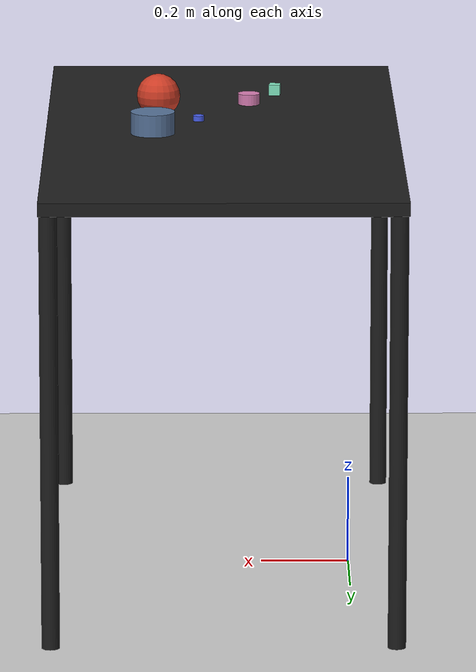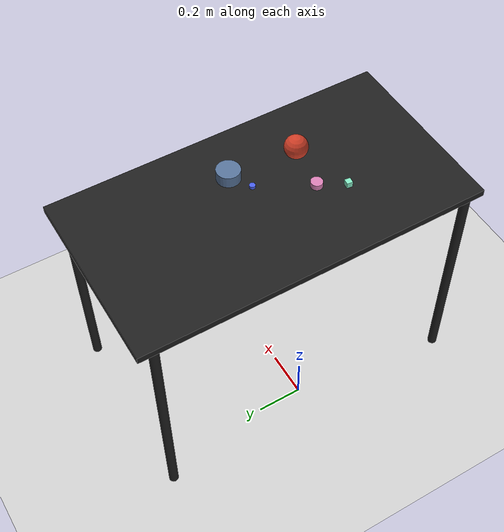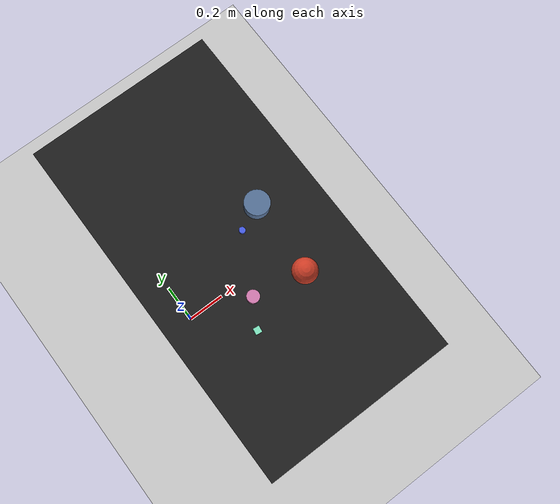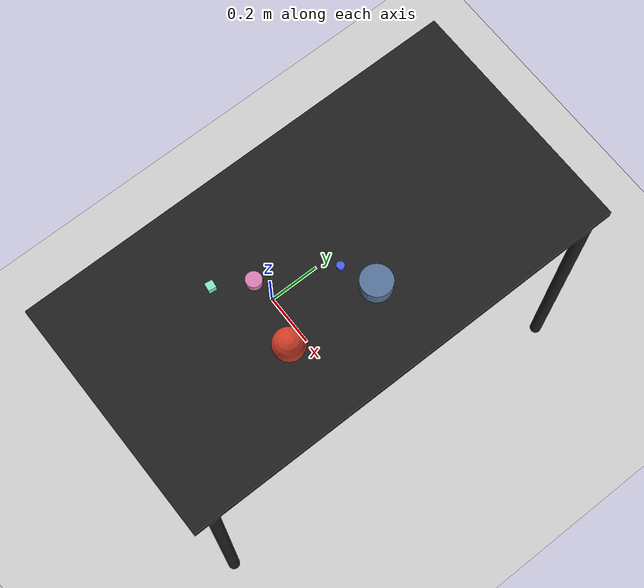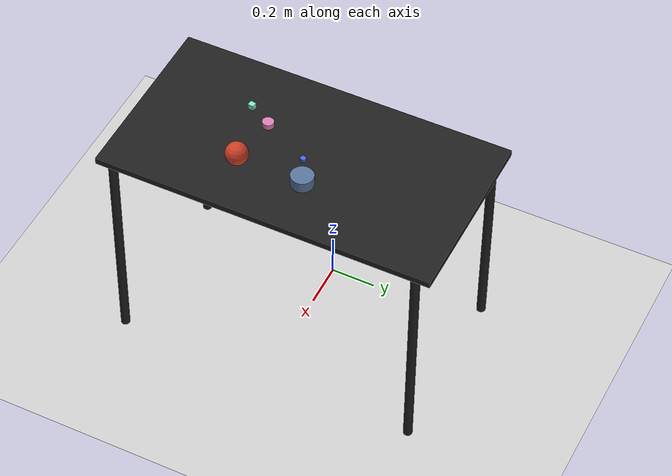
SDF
<?xml version="1.0" ?>
<sdf version="1.6">
  <world name="arm_world">
    <plugin filename="gz-sim-physics-system" name="gz::sim::systems::Physics">
      <engine>
        <filename>libgz-physics-bullet-featherstone-plugin.so</filename>
      </engine>
    </plugin>
    <plugin filename="gz-sim-user-commands-system" name="gz::sim::systems::UserCommands"/>
    <plugin filename="gz-sim-scene-broadcaster-system" name="gz::sim::systems::SceneBroadcaster"/>
    <plugin filename="gz-sim-sensors-system" name="gz::sim::systems::Sensors">
      <render_engine>ogre2</render_engine>
    </plugin>
    <gravity>0.0 0.0 -9.8</gravity>
    <scene>
      <shadows>false</shadows>
    </scene>
    <gui>
      <camera name="user_camera">
        <pose>0.75 -0.75 1.4 0 0.29 2.21</pose>
      </camera>
    </gui>
    <include>
      <uri>https://fuel.gazebosim.org/1.0/OpenRobotics/models/Sun</uri>
    </include>
    <model name="table">
      <static>true</static>
      <include>
        <uri>model://table</uri>
      </include>
      <pose>0.29 0 0 0 0 1.5708</pose>
    </model>
    <model name="ground_plane">
      <static>true</static>
      <link name="link">
        <collision name="collision">
          <geometry>
            <plane>
              <normal>0 0 1</normal>
            </plane>
          </geometry>
          <surface>
            <friction>
              <ode>
                <mu>1.0</mu>
                <mu2>1.0</mu2>
              </ode>
            </friction>
          </surface>
        </collision>
        <visual name="visual">
          <geometry>
            <plane>
              <normal>0 0 1</normal>
              <size>100 100</size>
            </plane>
          </geometry>
          <material>
            <ambient>0.8 0.8 0.8 1</ambient>
            <diffuse>0.8 0.8 0.8 1</diffuse>
            <specular>0.8 0.8 0.8 1</specular>
          </material>
        </visual>
      </link>
    </model>
    <model name="cylinder_m_0">
      <pose>0.228 -0.194 1.05 0 0 1.76</pose>
      <link name="cylinder_m_0_link">
        <collision name="cylinder_m_0_collision">
          <geometry>
            <cylinder>
              <radius>0.025</radius>
              <length>0.025</length>
            </cylinder>
          </geometry>
        </collision>
        <visual name="cylinder_m_0_visual">
          <geometry>
            <cylinder>
              <radius>0.025</radius>
              <length>0.025</length>
            </cylinder>
          </geometry>
          <material>
            <ambient>0.84 0.49 0.7 1</ambient>
            <diffuse>0.84 0.49 0.7 1</diffuse>
          </material>
        </visual>
        <velocity_decay>
          <linear>1</linear>
          <angular>1</angular>
        </velocity_decay>
      </link>
    </model>
    <model name="cylinder_l_1">
      <pose>0.447 0.072 1.05 0 0 1.44</pose>
      <link name="cylinder_l_1_link">
        <collision name="cylinder_l_1_collision">
          <geometry>
            <cylinder>
              <radius>0.05</radius>
              <length>0.05</length>
            </cylinder>
          </geometry>
        </collision>
        <visual name="cylinder_l_1_visual">
          <geometry>
            <cylinder>
              <radius>0.05</radius>
              <length>0.05</length>
            </cylinder>
          </geometry>
          <material>
            <ambient>0.34 0.45 0.6 1</ambient>
            <diffuse>0.34 0.45 0.6 1</diffuse>
          </material>
        </visual>
        <velocity_decay>
          <linear>1</linear>
          <angular>1</angular>
        </velocity_decay>
      </link>
    </model>
    <model name="cube_s_2">
      <pose>0.167 -0.3 1.05 0 0 6.15</pose>
      <link name="cube_s_2_link">
        <collision name="cube_s_2_collision">
          <geometry>
            <box>
              <size>0.025 0.025 0.025</size>
            </box>
          </geometry>
        </collision>
        <visual name="cube_s_2_visual">
          <geometry>
            <box>
              <size>0.025 0.025 0.025</size>
            </box>
          </geometry>
          <material>
            <ambient>0.51 0.91 0.76 1</ambient>
            <diffuse>0.51 0.91 0.76 1</diffuse>
          </material>
        </visual>
        <velocity_decay>
          <linear>1</linear>
          <angular>1</angular>
        </velocity_decay>
      </link>
    </model>
    <model name="cylinder_s_3">
      <pose>0.344 0.025 1.05 0 0 3.52</pose>
      <link name="cylinder_s_3_link">
        <collision name="cylinder_s_3_collision">
          <geometry>
            <cylinder>
              <radius>0.0125</radius>
              <length>0.0125</length>
            </cylinder>
          </geometry>
        </collision>
        <visual name="cylinder_s_3_visual">
          <geometry>
            <cylinder>
              <radius>0.0125</radius>
              <length>0.0125</length>
            </cylinder>
          </geometry>
          <material>
            <ambient>0.28 0.37 0.92 1</ambient>
            <diffuse>0.28 0.37 0.92 1</diffuse>
          </material>
        </visual>
        <velocity_decay>
          <linear>1</linear>
          <angular>1</angular>
        </velocity_decay>
      </link>
    </model>
    <model name="sphere_l_4">
      <pose>0.436 -0.231 1.05 0 0 2.45</pose>
      <link name="sphere_l_4_link">
        <collision name="sphere_l_4_collision">
          <geometry>
            <sphere>
              <radius>0.05</radius>
            </sphere>
          </geometry>
        </collision>
        <visual name="sphere_l_4_visual">
          <geometry>
            <sphere>
              <radius>0.05</radius>
            </sphere>
          </geometry>
          <material>
            <ambient>0.81 0.24 0.15 1</ambient>
            <diffuse>0.81 0.24 0.15 1</diffuse>
          </material>
        </visual>
        <velocity_decay>
          <linear>1</linear>
          <angular>1</angular>
        </velocity_decay>
      </link>
    </model>
  </world>
</sdf>

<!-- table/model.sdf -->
<sdf version="1.5">
  <model name="table">
    <static>true</static>
    <link name="link">
      <collision name="surface">
        <pose>0 0 1.0 0 0 0</pose>
        <geometry>
          <box>
            <size>1.5 0.8 0.03</size>
          </box>
        </geometry>
        <surface>
          <friction>
            <ode>
              <mu>0.6</mu>
              <mu2>0.6</mu2>
            </ode>
          </friction>
        </surface>
      </collision>
      <visual name="surface">
        <pose>0 0 1.0 0 0 0</pose>
        <geometry>
          <box>
            <size>1.5 0.8 0.03</size>
          </box>
        </geometry>
        <material>
          <script>
            <uri>file://media/materials/scripts/gazebo.material</uri>
            <name>Gazebo/Black</name>
          </script>
        </material>
      </visual>
      <collision name="front_left_leg">
        <pose>0.68 0.38 0.5 0 0 0</pose>
        <geometry>
          <cylinder>
            <radius>0.02</radius>
            <length>1.0</length>
          </cylinder>
        </geometry>
      </collision>
      <visual name="front_left_leg">
        <pose>0.68 0.38 0.5 0 0 0</pose>
        <geometry>
          <cylinder>
            <radius>0.02</radius>
            <length>1.0</length>
          </cylinder>
        </geometry>
        <material>
          <script>
            <uri>file://media/materials/scripts/gazebo.material</uri>
            <name>Gazebo/Black</name>
          </script>
        </material>
      </visual>
      <collision name="front_right_leg">
        <pose>0.68 -0.38 0.5 0 0 0</pose>
        <geometry>
          <cylinder>
            <radius>0.02</radius>
            <length>1.0</length>
          </cylinder>
        </geometry>
      </collision>
      <visual name="front_right_leg">
        <pose>0.68 -0.38 0.5 0 0 0</pose>
        <geometry>
          <cylinder>
            <radius>0.02</radius>
            <length>1.0</length>
          </cylinder>
        </geometry>
        <material>
          <script>
            <uri>file://media/materials/scripts/gazebo.material</uri>
            <name>Gazebo/Black</name>
          </script>
        </material>
      </visual>
      <collision name="back_right_leg">
        <pose>-0.68 -0.38 0.5 0 0 0</pose>
        <geometry>
          <cylinder>
            <radius>0.02</radius>
            <length>1.0</length>
          </cylinder>
        </geometry>
      </collision>
      <visual name="back_right_leg">
        <pose>-0.68 -0.38 0.5 0 0 0</pose>
        <geometry>
          <cylinder>
            <radius>0.02</radius>
            <length>1.0</length>
          </cylinder>
        </geometry>
        <material>
          <script>
            <uri>file://media/materials/scripts/gazebo.material</uri>
            <name>Gazebo/Black</name>
          </script>
        </material>
      </visual>
      <collision name="back_left_leg">
        <pose>-0.68 0.38 0.5 0 0 0</pose>
        <geometry>
          <cylinder>
            <radius>0.02</radius>
            <length>1.0</length>
          </cylinder>
        </geometry>
      </collision>
      <visual name="back_left_leg">
        <pose>-0.68 0.38 0.5 0 0 0</pose>
        <geometry>
          <cylinder>
            <radius>0.02</radius>
            <length>1.0</length>
          </cylinder>
        </geometry>
        <material>
          <script>
            <uri>file://media/materials/scripts/gazebo.material</uri>
            <name>Gazebo/Black</name>
          </script>
        </material>
      </visual>
    </link>
  </model>
</sdf>
